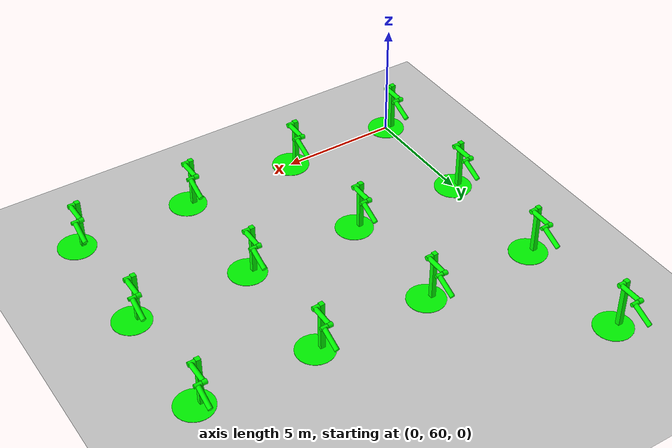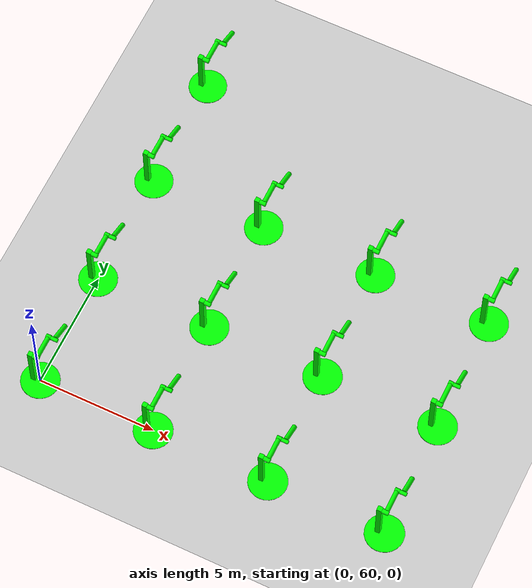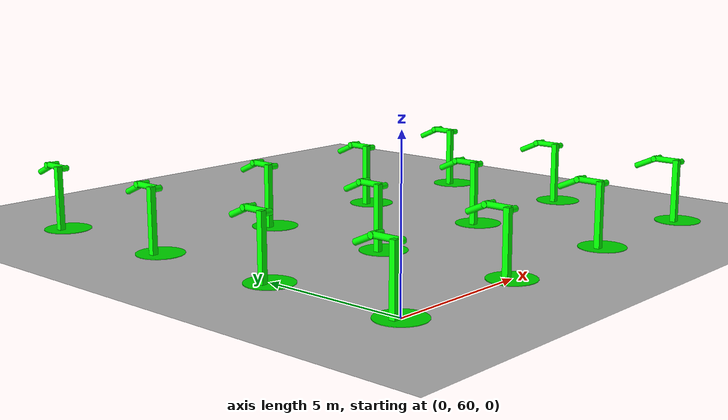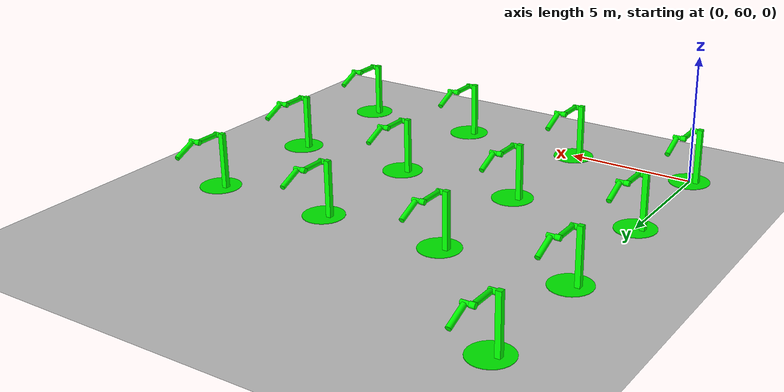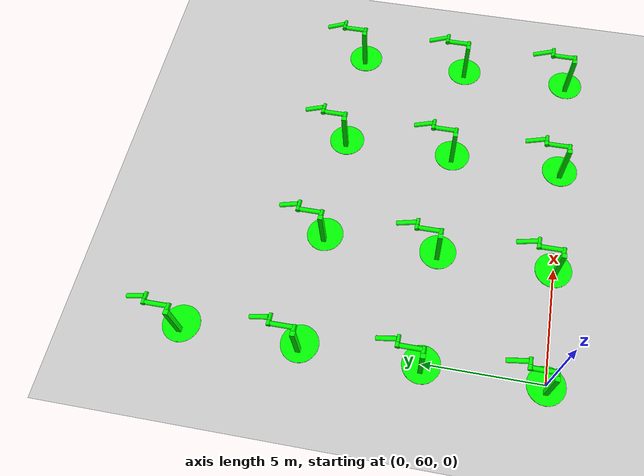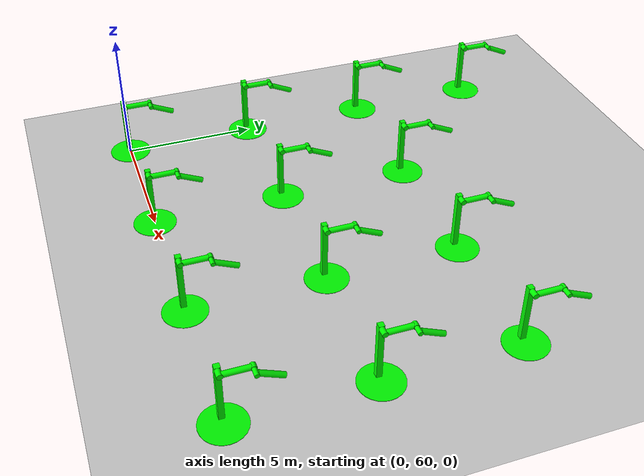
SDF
<sdf version="1.6">
 <world name="double_pendulums">
  <model name="ground_plane">
   <static>true</static>
   <link name="link">
    <collision name="collision">
     <geometry><plane><normal>0 0 1</normal><size>100 100</size></plane></geometry>
    </collision>
    <visual name="visual">
     <geometry><plane><normal>0 0 1</normal><size>100 100</size></plane></geometry>
     <material>
      <ambient>0.8 0.8 0.8 1</ambient>
      <diffuse>0.8 0.8 0.8 1</diffuse>
      <specular>0.8 0.8 0.8 1</specular>
     </material>
    </visual>
   </link>
  </model>
  <model name="dbl_pendulum_310">
   <pose>0 60 0 0 0 0</pose>
   <link name="base">
    <inertial><mass>100</mass></inertial>
    <visual name="vis_plate_on_ground">
     <pose>0 0 0.01 0 0 0</pose>
     <geometry><cylinder><radius>0.8</radius><length>0.02</length></cylinder></geometry>
     <material><ambient>0 1 0 1</ambient><diffuse>0 1 0 1</diffuse><specular>0 1 0 1</specular></material>
    </visual>
    <visual name="vis_pole">
     <pose>-0.275 0 1.1 0 0 0</pose>
     <geometry><box><size>0.2 0.2 2.2</size></box></geometry>
     <material><ambient>0 1 0 1</ambient><diffuse>0 1 0 1</diffuse><specular>0 1 0 1</specular></material>
    </visual>
    <collision name="col_plate_on_ground">
     <pose>0 0 0.01 0 0 0</pose>
     <geometry><cylinder><radius>0.8</radius><length>0.02</length></cylinder></geometry>
    </collision>
    <collision name="col_pole">
     <pose>-0.275 0 1.1 0 0 0</pose>
     <geometry><box><size>0.2 0.2 2.2</size></box></geometry>
    </collision>
   </link>
   <link name="upper_link">
    <pose>0 0 2.1 -1.5708 0 0</pose>
    <inertial><pose>0 0 0.5 0 0 0</pose></inertial>
    <visual name="vis_upper_joint">
     <pose>-0.05 0 0 0 1.5708 0</pose>
     <geometry><cylinder><radius>0.1</radius><length>0.3</length></cylinder></geometry>
     <material><ambient>0 1 0 1</ambient><diffuse>0 1 0 1</diffuse><specular>0 1 0 1</specular></material>
    </visual>
    <visual name="vis_lower_joint">
     <pose>0 0 1.0 0 1.5708 0</pose>
     <geometry><cylinder><radius>0.1</radius><length>0.2</length></cylinder></geometry>
     <material><ambient>0 1 0 1</ambient><diffuse>0 1 0 1</diffuse><specular>0 1 0 1</specular></material>
    </visual>
    <visual name="vis_cylinder">
     <pose>0 0 0.5 0 0 0</pose>
     <geometry><cylinder><radius>0.1</radius><length>0.9</length></cylinder></geometry>
     <material><ambient>0 1 0 1</ambient><diffuse>0 1 0 1</diffuse><specular>0 1 0 1</specular></material>
    </visual>
    <collision name="col_upper_joint">
     <pose>-0.05 0 0 0 1.5708 0</pose>
     <geometry><cylinder><radius>0.1</radius><length>0.3</length></cylinder></geometry>
    </collision>
    <collision name="col_lower_joint">
     <pose>0 0 1.0 0 1.5708 0</pose>
     <geometry><cylinder><radius>0.1</radius><length>0.2</length></cylinder></geometry>
    </collision>
    <collision name="col_cylinder">
     <pose>0 0 0.5 0 0 0</pose>
     <geometry><cylinder><radius>0.1</radius><length>0.9</length></cylinder></geometry>
    </collision>
   </link>
   <link name="lower_link">
    <pose>0.25 1.0 2.1 -2 0 0</pose>
    <inertial><pose>0 0 0.5 0 0 0</pose></inertial>
    <visual name="vis_lower_joint">
     <pose>0 0 0 0 1.5708 0</pose>
     <geometry><cylinder><radius>0.08</radius><length>0.3</length></cylinder></geometry>
     <material><ambient>0 1 0 1</ambient><diffuse>0 1 0 1</diffuse><specular>0 1 0 1</specular></material>
    </visual>
    <visual name="vis_cylinder">
     <pose>0 0 0.5 0 0 0</pose>
     <geometry><cylinder><radius>0.1</radius><length>0.9</length></cylinder></geometry>
     <material><ambient>0 1 0 1</ambient><diffuse>0 1 0 1</diffuse><specular>0 1 0 1</specular></material>
    </visual>
    <collision name="col_lower_joint">
     <pose>0 0 0 0 1.5708 0</pose>
     <geometry><cylinder><radius>0.08</radius><length>0.3</length></cylinder></geometry>
    </collision>
    <collision name="col_cylinder">
     <pose>0 0 0.5 0 0 0</pose>
     <geometry><cylinder><radius>0.1</radius><length>0.9</length></cylinder></geometry>
    </collision>
   </link>
   <joint name="upper_joint" type="revolute">
    <parent>base</parent>
    <child>upper_link</child>
    <axis><xyz>1.0 0 0</xyz></axis>
   </joint>
   <joint name="lower_joint" type="revolute">
    <parent>upper_link</parent>
    <child>lower_link</child>
    <axis><xyz>1.0 0 0</xyz></axis>
   </joint>
  </model>
  <model name="dbl_pendulum_311">
   <pose>5 60 0 0 0 0</pose>
   <link name="base">
    <inertial><mass>100</mass></inertial>
    <visual name="vis_plate_on_ground">
     <pose>0 0 0.01 0 0 0</pose>
     <geometry><cylinder><radius>0.8</radius><length>0.02</length></cylinder></geometry>
     <material><ambient>0 1 0 1</ambient><diffuse>0 1 0 1</diffuse><specular>0 1 0 1</specular></material>
    </visual>
    <visual name="vis_pole">
     <pose>-0.275 0 1.1 0 0 0</pose>
     <geometry><box><size>0.2 0.2 2.2</size></box></geometry>
     <material><ambient>0 1 0 1</ambient><diffuse>0 1 0 1</diffuse><specular>0 1 0 1</specular></material>
    </visual>
    <collision name="col_plate_on_ground">
     <pose>0 0 0.01 0 0 0</pose>
     <geometry><cylinder><radius>0.8</radius><length>0.02</length></cylinder></geometry>
    </collision>
    <collision name="col_pole">
     <pose>-0.275 0 1.1 0 0 0</pose>
     <geometry><box><size>0.2 0.2 2.2</size></box></geometry>
    </collision>
   </link>
   <link name="upper_link">
    <pose>0 0 2.1 -1.5708 0 0</pose>
    <inertial><pose>0 0 0.5 0 0 0</pose></inertial>
    <visual name="vis_upper_joint">
     <pose>-0.05 0 0 0 1.5708 0</pose>
     <geometry><cylinder><radius>0.1</radius><length>0.3</length></cylinder></geometry>
     <material><ambient>0 1 0 1</ambient><diffuse>0 1 0 1</diffuse><specular>0 1 0 1</specular></material>
    </visual>
    <visual name="vis_lower_joint">
     <pose>0 0 1.0 0 1.5708 0</pose>
     <geometry><cylinder><radius>0.1</radius><length>0.2</length></cylinder></geometry>
     <material><ambient>0 1 0 1</ambient><diffuse>0 1 0 1</diffuse><specular>0 1 0 1</specular></material>
    </visual>
    <visual name="vis_cylinder">
     <pose>0 0 0.5 0 0 0</pose>
     <geometry><cylinder><radius>0.1</radius><length>0.9</length></cylinder></geometry>
     <material><ambient>0 1 0 1</ambient><diffuse>0 1 0 1</diffuse><specular>0 1 0 1</specular></material>
    </visual>
    <collision name="col_upper_joint">
     <pose>-0.05 0 0 0 1.5708 0</pose>
     <geometry><cylinder><radius>0.1</radius><length>0.3</length></cylinder></geometry>
    </collision>
    <collision name="col_lower_joint">
     <pose>0 0 1.0 0 1.5708 0</pose>
     <geometry><cylinder><radius>0.1</radius><length>0.2</length></cylinder></geometry>
    </collision>
    <collision name="col_cylinder">
     <pose>0 0 0.5 0 0 0</pose>
     <geometry><cylinder><radius>0.1</radius><length>0.9</length></cylinder></geometry>
    </collision>
   </link>
   <link name="lower_link">
    <pose>0.25 1.0 2.1 -2 0 0</pose>
    <inertial><pose>0 0 0.5 0 0 0</pose></inertial>
    <visual name="vis_lower_joint">
     <pose>0 0 0 0 1.5708 0</pose>
     <geometry><cylinder><radius>0.08</radius><length>0.3</length></cylinder></geometry>
     <material><ambient>0 1 0 1</ambient><diffuse>0 1 0 1</diffuse><specular>0 1 0 1</specular></material>
    </visual>
    <visual name="vis_cylinder">
     <pose>0 0 0.5 0 0 0</pose>
     <geometry><cylinder><radius>0.1</radius><length>0.9</length></cylinder></geometry>
     <material><ambient>0 1 0 1</ambient><diffuse>0 1 0 1</diffuse><specular>0 1 0 1</specular></material>
    </visual>
    <collision name="col_lower_joint">
     <pose>0 0 0 0 1.5708 0</pose>
     <geometry><cylinder><radius>0.08</radius><length>0.3</length></cylinder></geometry>
    </collision>
    <collision name="col_cylinder">
     <pose>0 0 0.5 0 0 0</pose>
     <geometry><cylinder><radius>0.1</radius><length>0.9</length></cylinder></geometry>
    </collision>
   </link>
   <joint name="upper_joint" type="revolute">
    <parent>base</parent>
    <child>upper_link</child>
    <axis><xyz>1.0 0 0</xyz></axis>
   </joint>
   <joint name="lower_joint" type="revolute">
    <parent>upper_link</parent>
    <child>lower_link</child>
    <axis><xyz>1.0 0 0</xyz></axis>
   </joint>
  </model>
  <model name="dbl_pendulum_312">
   <pose>10 60 0 0 0 0</pose>
   <link name="base">
    <inertial><mass>100</mass></inertial>
    <visual name="vis_plate_on_ground">
     <pose>0 0 0.01 0 0 0</pose>
     <geometry><cylinder><radius>0.8</radius><length>0.02</length></cylinder></geometry>
     <material><ambient>0 1 0 1</ambient><diffuse>0 1 0 1</diffuse><specular>0 1 0 1</specular></material>
    </visual>
    <visual name="vis_pole">
     <pose>-0.275 0 1.1 0 0 0</pose>
     <geometry><box><size>0.2 0.2 2.2</size></box></geometry>
     <material><ambient>0 1 0 1</ambient><diffuse>0 1 0 1</diffuse><specular>0 1 0 1</specular></material>
    </visual>
    <collision name="col_plate_on_ground">
     <pose>0 0 0.01 0 0 0</pose>
     <geometry><cylinder><radius>0.8</radius><length>0.02</length></cylinder></geometry>
    </collision>
    <collision name="col_pole">
     <pose>-0.275 0 1.1 0 0 0</pose>
     <geometry><box><size>0.2 0.2 2.2</size></box></geometry>
    </collision>
   </link>
   <link name="upper_link">
    <pose>0 0 2.1 -1.5708 0 0</pose>
    <inertial><pose>0 0 0.5 0 0 0</pose></inertial>
    <visual name="vis_upper_joint">
     <pose>-0.05 0 0 0 1.5708 0</pose>
     <geometry><cylinder><radius>0.1</radius><length>0.3</length></cylinder></geometry>
     <material><ambient>0 1 0 1</ambient><diffuse>0 1 0 1</diffuse><specular>0 1 0 1</specular></material>
    </visual>
    <visual name="vis_lower_joint">
     <pose>0 0 1.0 0 1.5708 0</pose>
     <geometry><cylinder><radius>0.1</radius><length>0.2</length></cylinder></geometry>
     <material><ambient>0 1 0 1</ambient><diffuse>0 1 0 1</diffuse><specular>0 1 0 1</specular></material>
    </visual>
    <visual name="vis_cylinder">
     <pose>0 0 0.5 0 0 0</pose>
     <geometry><cylinder><radius>0.1</radius><length>0.9</length></cylinder></geometry>
     <material><ambient>0 1 0 1</ambient><diffuse>0 1 0 1</diffuse><specular>0 1 0 1</specular></material>
    </visual>
    <collision name="col_upper_joint">
     <pose>-0.05 0 0 0 1.5708 0</pose>
     <geometry><cylinder><radius>0.1</radius><length>0.3</length></cylinder></geometry>
    </collision>
    <collision name="col_lower_joint">
     <pose>0 0 1.0 0 1.5708 0</pose>
     <geometry><cylinder><radius>0.1</radius><length>0.2</length></cylinder></geometry>
    </collision>
    <collision name="col_cylinder">
     <pose>0 0 0.5 0 0 0</pose>
     <geometry><cylinder><radius>0.1</radius><length>0.9</length></cylinder></geometry>
    </collision>
   </link>
   <link name="lower_link">
    <pose>0.25 1.0 2.1 -2 0 0</pose>
    <inertial><pose>0 0 0.5 0 0 0</pose></inertial>
    <visual name="vis_lower_joint">
     <pose>0 0 0 0 1.5708 0</pose>
     <geometry><cylinder><radius>0.08</radius><length>0.3</length></cylinder></geometry>
     <material><ambient>0 1 0 1</ambient><diffuse>0 1 0 1</diffuse><specular>0 1 0 1</specular></material>
    </visual>
    <visual name="vis_cylinder">
     <pose>0 0 0.5 0 0 0</pose>
     <geometry><cylinder><radius>0.1</radius><length>0.9</length></cylinder></geometry>
     <material><ambient>0 1 0 1</ambient><diffuse>0 1 0 1</diffuse><specular>0 1 0 1</specular></material>
    </visual>
    <collision name="col_lower_joint">
     <pose>0 0 0 0 1.5708 0</pose>
     <geometry><cylinder><radius>0.08</radius><length>0.3</length></cylinder></geometry>
    </collision>
    <collision name="col_cylinder">
     <pose>0 0 0.5 0 0 0</pose>
     <geometry><cylinder><radius>0.1</radius><length>0.9</length></cylinder></geometry>
    </collision>
   </link>
   <joint name="upper_joint" type="revolute">
    <parent>base</parent>
    <child>upper_link</child>
    <axis><xyz>1.0 0 0</xyz></axis>
   </joint>
   <joint name="lower_joint" type="revolute">
    <parent>upper_link</parent>
    <child>lower_link</child>
    <axis><xyz>1.0 0 0</xyz></axis>
   </joint>
  </model>
  <model name="dbl_pendulum_313">
   <pose>15 60 0 0 0 0</pose>
   <link name="base">
    <inertial><mass>100</mass></inertial>
    <visual name="vis_plate_on_ground">
     <pose>0 0 0.01 0 0 0</pose>
     <geometry><cylinder><radius>0.8</radius><length>0.02</length></cylinder></geometry>
     <material><ambient>0 1 0 1</ambient><diffuse>0 1 0 1</diffuse><specular>0 1 0 1</specular></material>
    </visual>
    <visual name="vis_pole">
     <pose>-0.275 0 1.1 0 0 0</pose>
     <geometry><box><size>0.2 0.2 2.2</size></box></geometry>
     <material><ambient>0 1 0 1</ambient><diffuse>0 1 0 1</diffuse><specular>0 1 0 1</specular></material>
    </visual>
    <collision name="col_plate_on_ground">
     <pose>0 0 0.01 0 0 0</pose>
     <geometry><cylinder><radius>0.8</radius><length>0.02</length></cylinder></geometry>
    </collision>
    <collision name="col_pole">
     <pose>-0.275 0 1.1 0 0 0</pose>
     <geometry><box><size>0.2 0.2 2.2</size></box></geometry>
    </collision>
   </link>
   <link name="upper_link">
    <pose>0 0 2.1 -1.5708 0 0</pose>
    <inertial><pose>0 0 0.5 0 0 0</pose></inertial>
    <visual name="vis_upper_joint">
     <pose>-0.05 0 0 0 1.5708 0</pose>
     <geometry><cylinder><radius>0.1</radius><length>0.3</length></cylinder></geometry>
     <material><ambient>0 1 0 1</ambient><diffuse>0 1 0 1</diffuse><specular>0 1 0 1</specular></material>
    </visual>
    <visual name="vis_lower_joint">
     <pose>0 0 1.0 0 1.5708 0</pose>
     <geometry><cylinder><radius>0.1</radius><length>0.2</length></cylinder></geometry>
     <material><ambient>0 1 0 1</ambient><diffuse>0 1 0 1</diffuse><specular>0 1 0 1</specular></material>
    </visual>
    <visual name="vis_cylinder">
     <pose>0 0 0.5 0 0 0</pose>
     <geometry><cylinder><radius>0.1</radius><length>0.9</length></cylinder></geometry>
     <material><ambient>0 1 0 1</ambient><diffuse>0 1 0 1</diffuse><specular>0 1 0 1</specular></material>
    </visual>
    <collision name="col_upper_joint">
     <pose>-0.05 0 0 0 1.5708 0</pose>
     <geometry><cylinder><radius>0.1</radius><length>0.3</length></cylinder></geometry>
    </collision>
    <collision name="col_lower_joint">
     <pose>0 0 1.0 0 1.5708 0</pose>
     <geometry><cylinder><radius>0.1</radius><length>0.2</length></cylinder></geometry>
    </collision>
    <collision name="col_cylinder">
     <pose>0 0 0.5 0 0 0</pose>
     <geometry><cylinder><radius>0.1</radius><length>0.9</length></cylinder></geometry>
    </collision>
   </link>
   <link name="lower_link">
    <pose>0.25 1.0 2.1 -2 0 0</pose>
    <inertial><pose>0 0 0.5 0 0 0</pose></inertial>
    <visual name="vis_lower_joint">
     <pose>0 0 0 0 1.5708 0</pose>
     <geometry><cylinder><radius>0.08</radius><length>0.3</length></cylinder></geometry>
     <material><ambient>0 1 0 1</ambient><diffuse>0 1 0 1</diffuse><specular>0 1 0 1</specular></material>
    </visual>
    <visual name="vis_cylinder">
     <pose>0 0 0.5 0 0 0</pose>
     <geometry><cylinder><radius>0.1</radius><length>0.9</length></cylinder></geometry>
     <material><ambient>0 1 0 1</ambient><diffuse>0 1 0 1</diffuse><specular>0 1 0 1</specular></material>
    </visual>
    <collision name="col_lower_joint">
     <pose>0 0 0 0 1.5708 0</pose>
     <geometry><cylinder><radius>0.08</radius><length>0.3</length></cylinder></geometry>
    </collision>
    <collision name="col_cylinder">
     <pose>0 0 0.5 0 0 0</pose>
     <geometry><cylinder><radius>0.1</radius><length>0.9</length></cylinder></geometry>
    </collision>
   </link>
   <joint name="upper_joint" type="revolute">
    <parent>base</parent>
    <child>upper_link</child>
    <axis><xyz>1.0 0 0</xyz></axis>
   </joint>
   <joint name="lower_joint" type="revolute">
    <parent>upper_link</parent>
    <child>lower_link</child>
    <axis><xyz>1.0 0 0</xyz></axis>
   </joint>
  </model>
  <model name="dbl_pendulum_335">
   <pose>0 65 0 0 0 0</pose>
   <link name="base">
    <inertial><mass>100</mass></inertial>
    <visual name="vis_plate_on_ground">
     <pose>0 0 0.01 0 0 0</pose>
     <geometry><cylinder><radius>0.8</radius><length>0.02</length></cylinder></geometry>
     <material><ambient>0 1 0 1</ambient><diffuse>0 1 0 1</diffuse><specular>0 1 0 1</specular></material>
    </visual>
    <visual name="vis_pole">
     <pose>-0.275 0 1.1 0 0 0</pose>
     <geometry><box><size>0.2 0.2 2.2</size></box></geometry>
     <material><ambient>0 1 0 1</ambient><diffuse>0 1 0 1</diffuse><specular>0 1 0 1</specular></material>
    </visual>
    <collision name="col_plate_on_ground">
     <pose>0 0 0.01 0 0 0</pose>
     <geometry><cylinder><radius>0.8</radius><length>0.02</length></cylinder></geometry>
    </collision>
    <collision name="col_pole">
     <pose>-0.275 0 1.1 0 0 0</pose>
     <geometry><box><size>0.2 0.2 2.2</size></box></geometry>
    </collision>
   </link>
   <link name="upper_link">
    <pose>0 0 2.1 -1.5708 0 0</pose>
    <inertial><pose>0 0 0.5 0 0 0</pose></inertial>
    <visual name="vis_upper_joint">
     <pose>-0.05 0 0 0 1.5708 0</pose>
     <geometry><cylinder><radius>0.1</radius><length>0.3</length></cylinder></geometry>
     <material><ambient>0 1 0 1</ambient><diffuse>0 1 0 1</diffuse><specular>0 1 0 1</specular></material>
    </visual>
    <visual name="vis_lower_joint">
     <pose>0 0 1.0 0 1.5708 0</pose>
     <geometry><cylinder><radius>0.1</radius><length>0.2</length></cylinder></geometry>
     <material><ambient>0 1 0 1</ambient><diffuse>0 1 0 1</diffuse><specular>0 1 0 1</specular></material>
    </visual>
    <visual name="vis_cylinder">
     <pose>0 0 0.5 0 0 0</pose>
     <geometry><cylinder><radius>0.1</radius><length>0.9</length></cylinder></geometry>
     <material><ambient>0 1 0 1</ambient><diffuse>0 1 0 1</diffuse><specular>0 1 0 1</specular></material>
    </visual>
    <collision name="col_upper_joint">
     <pose>-0.05 0 0 0 1.5708 0</pose>
     <geometry><cylinder><radius>0.1</radius><length>0.3</length></cylinder></geometry>
    </collision>
    <collision name="col_lower_joint">
     <pose>0 0 1.0 0 1.5708 0</pose>
     <geometry><cylinder><radius>0.1</radius><length>0.2</length></cylinder></geometry>
    </collision>
    <collision name="col_cylinder">
     <pose>0 0 0.5 0 0 0</pose>
     <geometry><cylinder><radius>0.1</radius><length>0.9</length></cylinder></geometry>
    </collision>
   </link>
   <link name="lower_link">
    <pose>0.25 1.0 2.1 -2 0 0</pose>
    <inertial><pose>0 0 0.5 0 0 0</pose></inertial>
    <visual name="vis_lower_joint">
     <pose>0 0 0 0 1.5708 0</pose>
     <geometry><cylinder><radius>0.08</radius><length>0.3</length></cylinder></geometry>
     <material><ambient>0 1 0 1</ambient><diffuse>0 1 0 1</diffuse><specular>0 1 0 1</specular></material>
    </visual>
    <visual name="vis_cylinder">
     <pose>0 0 0.5 0 0 0</pose>
     <geometry><cylinder><radius>0.1</radius><length>0.9</length></cylinder></geometry>
     <material><ambient>0 1 0 1</ambient><diffuse>0 1 0 1</diffuse><specular>0 1 0 1</specular></material>
    </visual>
    <collision name="col_lower_joint">
     <pose>0 0 0 0 1.5708 0</pose>
     <geometry><cylinder><radius>0.08</radius><length>0.3</length></cylinder></geometry>
    </collision>
    <collision name="col_cylinder">
     <pose>0 0 0.5 0 0 0</pose>
     <geometry><cylinder><radius>0.1</radius><length>0.9</length></cylinder></geometry>
    </collision>
   </link>
   <joint name="upper_joint" type="revolute">
    <parent>base</parent>
    <child>upper_link</child>
    <axis><xyz>1.0 0 0</xyz></axis>
   </joint>
   <joint name="lower_joint" type="revolute">
    <parent>upper_link</parent>
    <child>lower_link</child>
    <axis><xyz>1.0 0 0</xyz></axis>
   </joint>
  </model>
  <model name="dbl_pendulum_336">
   <pose>5 65 0 0 0 0</pose>
   <link name="base">
    <inertial><mass>100</mass></inertial>
    <visual name="vis_plate_on_ground">
     <pose>0 0 0.01 0 0 0</pose>
     <geometry><cylinder><radius>0.8</radius><length>0.02</length></cylinder></geometry>
     <material><ambient>0 1 0 1</ambient><diffuse>0 1 0 1</diffuse><specular>0 1 0 1</specular></material>
    </visual>
    <visual name="vis_pole">
     <pose>-0.275 0 1.1 0 0 0</pose>
     <geometry><box><size>0.2 0.2 2.2</size></box></geometry>
     <material><ambient>0 1 0 1</ambient><diffuse>0 1 0 1</diffuse><specular>0 1 0 1</specular></material>
    </visual>
    <collision name="col_plate_on_ground">
     <pose>0 0 0.01 0 0 0</pose>
     <geometry><cylinder><radius>0.8</radius><length>0.02</length></cylinder></geometry>
    </collision>
    <collision name="col_pole">
     <pose>-0.275 0 1.1 0 0 0</pose>
     <geometry><box><size>0.2 0.2 2.2</size></box></geometry>
    </collision>
   </link>
   <link name="upper_link">
    <pose>0 0 2.1 -1.5708 0 0</pose>
    <inertial><pose>0 0 0.5 0 0 0</pose></inertial>
    <visual name="vis_upper_joint">
     <pose>-0.05 0 0 0 1.5708 0</pose>
     <geometry><cylinder><radius>0.1</radius><length>0.3</length></cylinder></geometry>
     <material><ambient>0 1 0 1</ambient><diffuse>0 1 0 1</diffuse><specular>0 1 0 1</specular></material>
    </visual>
    <visual name="vis_lower_joint">
     <pose>0 0 1.0 0 1.5708 0</pose>
     <geometry><cylinder><radius>0.1</radius><length>0.2</length></cylinder></geometry>
     <material><ambient>0 1 0 1</ambient><diffuse>0 1 0 1</diffuse><specular>0 1 0 1</specular></material>
    </visual>
    <visual name="vis_cylinder">
     <pose>0 0 0.5 0 0 0</pose>
     <geometry><cylinder><radius>0.1</radius><length>0.9</length></cylinder></geometry>
     <material><ambient>0 1 0 1</ambient><diffuse>0 1 0 1</diffuse><specular>0 1 0 1</specular></material>
    </visual>
    <collision name="col_upper_joint">
     <pose>-0.05 0 0 0 1.5708 0</pose>
     <geometry><cylinder><radius>0.1</radius><length>0.3</length></cylinder></geometry>
    </collision>
    <collision name="col_lower_joint">
     <pose>0 0 1.0 0 1.5708 0</pose>
     <geometry><cylinder><radius>0.1</radius><length>0.2</length></cylinder></geometry>
    </collision>
    <collision name="col_cylinder">
     <pose>0 0 0.5 0 0 0</pose>
     <geometry><cylinder><radius>0.1</radius><length>0.9</length></cylinder></geometry>
    </collision>
   </link>
   <link name="lower_link">
    <pose>0.25 1.0 2.1 -2 0 0</pose>
    <inertial><pose>0 0 0.5 0 0 0</pose></inertial>
    <visual name="vis_lower_joint">
     <pose>0 0 0 0 1.5708 0</pose>
     <geometry><cylinder><radius>0.08</radius><length>0.3</length></cylinder></geometry>
     <material><ambient>0 1 0 1</ambient><diffuse>0 1 0 1</diffuse><specular>0 1 0 1</specular></material>
    </visual>
    <visual name="vis_cylinder">
     <pose>0 0 0.5 0 0 0</pose>
     <geometry><cylinder><radius>0.1</radius><length>0.9</length></cylinder></geometry>
     <material><ambient>0 1 0 1</ambient><diffuse>0 1 0 1</diffuse><specular>0 1 0 1</specular></material>
    </visual>
    <collision name="col_lower_joint">
     <pose>0 0 0 0 1.5708 0</pose>
     <geometry><cylinder><radius>0.08</radius><length>0.3</length></cylinder></geometry>
    </collision>
    <collision name="col_cylinder">
     <pose>0 0 0.5 0 0 0</pose>
     <geometry><cylinder><radius>0.1</radius><length>0.9</length></cylinder></geometry>
    </collision>
   </link>
   <joint name="upper_joint" type="revolute">
    <parent>base</parent>
    <child>upper_link</child>
    <axis><xyz>1.0 0 0</xyz></axis>
   </joint>
   <joint name="lower_joint" type="revolute">
    <parent>upper_link</parent>
    <child>lower_link</child>
    <axis><xyz>1.0 0 0</xyz></axis>
   </joint>
  </model>
  <model name="dbl_pendulum_337">
   <pose>10 65 0 0 0 0</pose>
   <link name="base">
    <inertial><mass>100</mass></inertial>
    <visual name="vis_plate_on_ground">
     <pose>0 0 0.01 0 0 0</pose>
     <geometry><cylinder><radius>0.8</radius><length>0.02</length></cylinder></geometry>
     <material><ambient>0 1 0 1</ambient><diffuse>0 1 0 1</diffuse><specular>0 1 0 1</specular></material>
    </visual>
    <visual name="vis_pole">
     <pose>-0.275 0 1.1 0 0 0</pose>
     <geometry><box><size>0.2 0.2 2.2</size></box></geometry>
     <material><ambient>0 1 0 1</ambient><diffuse>0 1 0 1</diffuse><specular>0 1 0 1</specular></material>
    </visual>
    <collision name="col_plate_on_ground">
     <pose>0 0 0.01 0 0 0</pose>
     <geometry><cylinder><radius>0.8</radius><length>0.02</length></cylinder></geometry>
    </collision>
    <collision name="col_pole">
     <pose>-0.275 0 1.1 0 0 0</pose>
     <geometry><box><size>0.2 0.2 2.2</size></box></geometry>
    </collision>
   </link>
   <link name="upper_link">
    <pose>0 0 2.1 -1.5708 0 0</pose>
    <inertial><pose>0 0 0.5 0 0 0</pose></inertial>
    <visual name="vis_upper_joint">
     <pose>-0.05 0 0 0 1.5708 0</pose>
     <geometry><cylinder><radius>0.1</radius><length>0.3</length></cylinder></geometry>
     <material><ambient>0 1 0 1</ambient><diffuse>0 1 0 1</diffuse><specular>0 1 0 1</specular></material>
    </visual>
    <visual name="vis_lower_joint">
     <pose>0 0 1.0 0 1.5708 0</pose>
     <geometry><cylinder><radius>0.1</radius><length>0.2</length></cylinder></geometry>
     <material><ambient>0 1 0 1</ambient><diffuse>0 1 0 1</diffuse><specular>0 1 0 1</specular></material>
    </visual>
    <visual name="vis_cylinder">
     <pose>0 0 0.5 0 0 0</pose>
     <geometry><cylinder><radius>0.1</radius><length>0.9</length></cylinder></geometry>
     <material><ambient>0 1 0 1</ambient><diffuse>0 1 0 1</diffuse><specular>0 1 0 1</specular></material>
    </visual>
    <collision name="col_upper_joint">
     <pose>-0.05 0 0 0 1.5708 0</pose>
     <geometry><cylinder><radius>0.1</radius><length>0.3</length></cylinder></geometry>
    </collision>
    <collision name="col_lower_joint">
     <pose>0 0 1.0 0 1.5708 0</pose>
     <geometry><cylinder><radius>0.1</radius><length>0.2</length></cylinder></geometry>
    </collision>
    <collision name="col_cylinder">
     <pose>0 0 0.5 0 0 0</pose>
     <geometry><cylinder><radius>0.1</radius><length>0.9</length></cylinder></geometry>
    </collision>
   </link>
   <link name="lower_link">
    <pose>0.25 1.0 2.1 -2 0 0</pose>
    <inertial><pose>0 0 0.5 0 0 0</pose></inertial>
    <visual name="vis_lower_joint">
     <pose>0 0 0 0 1.5708 0</pose>
     <geometry><cylinder><radius>0.08</radius><length>0.3</length></cylinder></geometry>
     <material><ambient>0 1 0 1</ambient><diffuse>0 1 0 1</diffuse><specular>0 1 0 1</specular></material>
    </visual>
    <visual name="vis_cylinder">
     <pose>0 0 0.5 0 0 0</pose>
     <geometry><cylinder><radius>0.1</radius><length>0.9</length></cylinder></geometry>
     <material><ambient>0 1 0 1</ambient><diffuse>0 1 0 1</diffuse><specular>0 1 0 1</specular></material>
    </visual>
    <collision name="col_lower_joint">
     <pose>0 0 0 0 1.5708 0</pose>
     <geometry><cylinder><radius>0.08</radius><length>0.3</length></cylinder></geometry>
    </collision>
    <collision name="col_cylinder">
     <pose>0 0 0.5 0 0 0</pose>
     <geometry><cylinder><radius>0.1</radius><length>0.9</length></cylinder></geometry>
    </collision>
   </link>
   <joint name="upper_joint" type="revolute">
    <parent>base</parent>
    <child>upper_link</child>
    <axis><xyz>1.0 0 0</xyz></axis>
   </joint>
   <joint name="lower_joint" type="revolute">
    <parent>upper_link</parent>
    <child>lower_link</child>
    <axis><xyz>1.0 0 0</xyz></axis>
   </joint>
  </model>
  <model name="dbl_pendulum_338">
   <pose>15 65 0 0 0 0</pose>
   <link name="base">
    <inertial><mass>100</mass></inertial>
    <visual name="vis_plate_on_ground">
     <pose>0 0 0.01 0 0 0</pose>
     <geometry><cylinder><radius>0.8</radius><length>0.02</length></cylinder></geometry>
     <material><ambient>0 1 0 1</ambient><diffuse>0 1 0 1</diffuse><specular>0 1 0 1</specular></material>
    </visual>
    <visual name="vis_pole">
     <pose>-0.275 0 1.1 0 0 0</pose>
     <geometry><box><size>0.2 0.2 2.2</size></box></geometry>
     <material><ambient>0 1 0 1</ambient><diffuse>0 1 0 1</diffuse><specular>0 1 0 1</specular></material>
    </visual>
    <collision name="col_plate_on_ground">
     <pose>0 0 0.01 0 0 0</pose>
     <geometry><cylinder><radius>0.8</radius><length>0.02</length></cylinder></geometry>
    </collision>
    <collision name="col_pole">
     <pose>-0.275 0 1.1 0 0 0</pose>
     <geometry><box><size>0.2 0.2 2.2</size></box></geometry>
    </collision>
   </link>
   <link name="upper_link">
    <pose>0 0 2.1 -1.5708 0 0</pose>
    <inertial><pose>0 0 0.5 0 0 0</pose></inertial>
    <visual name="vis_upper_joint">
     <pose>-0.05 0 0 0 1.5708 0</pose>
     <geometry><cylinder><radius>0.1</radius><length>0.3</length></cylinder></geometry>
     <material><ambient>0 1 0 1</ambient><diffuse>0 1 0 1</diffuse><specular>0 1 0 1</specular></material>
    </visual>
    <visual name="vis_lower_joint">
     <pose>0 0 1.0 0 1.5708 0</pose>
     <geometry><cylinder><radius>0.1</radius><length>0.2</length></cylinder></geometry>
     <material><ambient>0 1 0 1</ambient><diffuse>0 1 0 1</diffuse><specular>0 1 0 1</specular></material>
    </visual>
    <visual name="vis_cylinder">
     <pose>0 0 0.5 0 0 0</pose>
     <geometry><cylinder><radius>0.1</radius><length>0.9</length></cylinder></geometry>
     <material><ambient>0 1 0 1</ambient><diffuse>0 1 0 1</diffuse><specular>0 1 0 1</specular></material>
    </visual>
    <collision name="col_upper_joint">
     <pose>-0.05 0 0 0 1.5708 0</pose>
     <geometry><cylinder><radius>0.1</radius><length>0.3</length></cylinder></geometry>
    </collision>
    <collision name="col_lower_joint">
     <pose>0 0 1.0 0 1.5708 0</pose>
     <geometry><cylinder><radius>0.1</radius><length>0.2</length></cylinder></geometry>
    </collision>
    <collision name="col_cylinder">
     <pose>0 0 0.5 0 0 0</pose>
     <geometry><cylinder><radius>0.1</radius><length>0.9</length></cylinder></geometry>
    </collision>
   </link>
   <link name="lower_link">
    <pose>0.25 1.0 2.1 -2 0 0</pose>
    <inertial><pose>0 0 0.5 0 0 0</pose></inertial>
    <visual name="vis_lower_joint">
     <pose>0 0 0 0 1.5708 0</pose>
     <geometry><cylinder><radius>0.08</radius><length>0.3</length></cylinder></geometry>
     <material><ambient>0 1 0 1</ambient><diffuse>0 1 0 1</diffuse><specular>0 1 0 1</specular></material>
    </visual>
    <visual name="vis_cylinder">
     <pose>0 0 0.5 0 0 0</pose>
     <geometry><cylinder><radius>0.1</radius><length>0.9</length></cylinder></geometry>
     <material><ambient>0 1 0 1</ambient><diffuse>0 1 0 1</diffuse><specular>0 1 0 1</specular></material>
    </visual>
    <collision name="col_lower_joint">
     <pose>0 0 0 0 1.5708 0</pose>
     <geometry><cylinder><radius>0.08</radius><length>0.3</length></cylinder></geometry>
    </collision>
    <collision name="col_cylinder">
     <pose>0 0 0.5 0 0 0</pose>
     <geometry><cylinder><radius>0.1</radius><length>0.9</length></cylinder></geometry>
    </collision>
   </link>
   <joint name="upper_joint" type="revolute">
    <parent>base</parent>
    <child>upper_link</child>
    <axis><xyz>1.0 0 0</xyz></axis>
   </joint>
   <joint name="lower_joint" type="revolute">
    <parent>upper_link</parent>
    <child>lower_link</child>
    <axis><xyz>1.0 0 0</xyz></axis>
   </joint>
  </model>
  <model name="dbl_pendulum_360">
   <pose>0 70 0 0 0 0</pose>
   <link name="base">
    <inertial><mass>100</mass></inertial>
    <visual name="vis_plate_on_ground">
     <pose>0 0 0.01 0 0 0</pose>
     <geometry><cylinder><radius>0.8</radius><length>0.02</length></cylinder></geometry>
     <material><ambient>0 1 0 1</ambient><diffuse>0 1 0 1</diffuse><specular>0 1 0 1</specular></material>
    </visual>
    <visual name="vis_pole">
     <pose>-0.275 0 1.1 0 0 0</pose>
     <geometry><box><size>0.2 0.2 2.2</size></box></geometry>
     <material><ambient>0 1 0 1</ambient><diffuse>0 1 0 1</diffuse><specular>0 1 0 1</specular></material>
    </visual>
    <collision name="col_plate_on_ground">
     <pose>0 0 0.01 0 0 0</pose>
     <geometry><cylinder><radius>0.8</radius><length>0.02</length></cylinder></geometry>
    </collision>
    <collision name="col_pole">
     <pose>-0.275 0 1.1 0 0 0</pose>
     <geometry><box><size>0.2 0.2 2.2</size></box></geometry>
    </collision>
   </link>
   <link name="upper_link">
    <pose>0 0 2.1 -1.5708 0 0</pose>
    <inertial><pose>0 0 0.5 0 0 0</pose></inertial>
    <visual name="vis_upper_joint">
     <pose>-0.05 0 0 0 1.5708 0</pose>
     <geometry><cylinder><radius>0.1</radius><length>0.3</length></cylinder></geometry>
     <material><ambient>0 1 0 1</ambient><diffuse>0 1 0 1</diffuse><specular>0 1 0 1</specular></material>
    </visual>
    <visual name="vis_lower_joint">
     <pose>0 0 1.0 0 1.5708 0</pose>
     <geometry><cylinder><radius>0.1</radius><length>0.2</length></cylinder></geometry>
     <material><ambient>0 1 0 1</ambient><diffuse>0 1 0 1</diffuse><specular>0 1 0 1</specular></material>
    </visual>
    <visual name="vis_cylinder">
     <pose>0 0 0.5 0 0 0</pose>
     <geometry><cylinder><radius>0.1</radius><length>0.9</length></cylinder></geometry>
     <material><ambient>0 1 0 1</ambient><diffuse>0 1 0 1</diffuse><specular>0 1 0 1</specular></material>
    </visual>
    <collision name="col_upper_joint">
     <pose>-0.05 0 0 0 1.5708 0</pose>
     <geometry><cylinder><radius>0.1</radius><length>0.3</length></cylinder></geometry>
    </collision>
    <collision name="col_lower_joint">
     <pose>0 0 1.0 0 1.5708 0</pose>
     <geometry><cylinder><radius>0.1</radius><length>0.2</length></cylinder></geometry>
    </collision>
    <collision name="col_cylinder">
     <pose>0 0 0.5 0 0 0</pose>
     <geometry><cylinder><radius>0.1</radius><length>0.9</length></cylinder></geometry>
    </collision>
   </link>
   <link name="lower_link">
    <pose>0.25 1.0 2.1 -2 0 0</pose>
    <inertial><pose>0 0 0.5 0 0 0</pose></inertial>
    <visual name="vis_lower_joint">
     <pose>0 0 0 0 1.5708 0</pose>
     <geometry><cylinder><radius>0.08</radius><length>0.3</length></cylinder></geometry>
     <material><ambient>0 1 0 1</ambient><diffuse>0 1 0 1</diffuse><specular>0 1 0 1</specular></material>
    </visual>
    <visual name="vis_cylinder">
     <pose>0 0 0.5 0 0 0</pose>
     <geometry><cylinder><radius>0.1</radius><length>0.9</length></cylinder></geometry>
     <material><ambient>0 1 0 1</ambient><diffuse>0 1 0 1</diffuse><specular>0 1 0 1</specular></material>
    </visual>
    <collision name="col_lower_joint">
     <pose>0 0 0 0 1.5708 0</pose>
     <geometry><cylinder><radius>0.08</radius><length>0.3</length></cylinder></geometry>
    </collision>
    <collision name="col_cylinder">
     <pose>0 0 0.5 0 0 0</pose>
     <geometry><cylinder><radius>0.1</radius><length>0.9</length></cylinder></geometry>
    </collision>
   </link>
   <joint name="upper_joint" type="revolute">
    <parent>base</parent>
    <child>upper_link</child>
    <axis><xyz>1.0 0 0</xyz></axis>
   </joint>
   <joint name="lower_joint" type="revolute">
    <parent>upper_link</parent>
    <child>lower_link</child>
    <axis><xyz>1.0 0 0</xyz></axis>
   </joint>
  </model>
  <model name="dbl_pendulum_361">
   <pose>5 70 0 0 0 0</pose>
   <link name="base">
    <inertial><mass>100</mass></inertial>
    <visual name="vis_plate_on_ground">
     <pose>0 0 0.01 0 0 0</pose>
     <geometry><cylinder><radius>0.8</radius><length>0.02</length></cylinder></geometry>
     <material><ambient>0 1 0 1</ambient><diffuse>0 1 0 1</diffuse><specular>0 1 0 1</specular></material>
    </visual>
    <visual name="vis_pole">
     <pose>-0.275 0 1.1 0 0 0</pose>
     <geometry><box><size>0.2 0.2 2.2</size></box></geometry>
     <material><ambient>0 1 0 1</ambient><diffuse>0 1 0 1</diffuse><specular>0 1 0 1</specular></material>
    </visual>
    <collision name="col_plate_on_ground">
     <pose>0 0 0.01 0 0 0</pose>
     <geometry><cylinder><radius>0.8</radius><length>0.02</length></cylinder></geometry>
    </collision>
    <collision name="col_pole">
     <pose>-0.275 0 1.1 0 0 0</pose>
     <geometry><box><size>0.2 0.2 2.2</size></box></geometry>
    </collision>
   </link>
   <link name="upper_link">
    <pose>0 0 2.1 -1.5708 0 0</pose>
    <inertial><pose>0 0 0.5 0 0 0</pose></inertial>
    <visual name="vis_upper_joint">
     <pose>-0.05 0 0 0 1.5708 0</pose>
     <geometry><cylinder><radius>0.1</radius><length>0.3</length></cylinder></geometry>
     <material><ambient>0 1 0 1</ambient><diffuse>0 1 0 1</diffuse><specular>0 1 0 1</specular></material>
    </visual>
    <visual name="vis_lower_joint">
     <pose>0 0 1.0 0 1.5708 0</pose>
     <geometry><cylinder><radius>0.1</radius><length>0.2</length></cylinder></geometry>
     <material><ambient>0 1 0 1</ambient><diffuse>0 1 0 1</diffuse><specular>0 1 0 1</specular></material>
    </visual>
    <visual name="vis_cylinder">
     <pose>0 0 0.5 0 0 0</pose>
     <geometry><cylinder><radius>0.1</radius><length>0.9</length></cylinder></geometry>
     <material><ambient>0 1 0 1</ambient><diffuse>0 1 0 1</diffuse><specular>0 1 0 1</specular></material>
    </visual>
    <collision name="col_upper_joint">
     <pose>-0.05 0 0 0 1.5708 0</pose>
     <geometry><cylinder><radius>0.1</radius><length>0.3</length></cylinder></geometry>
    </collision>
    <collision name="col_lower_joint">
     <pose>0 0 1.0 0 1.5708 0</pose>
     <geometry><cylinder><radius>0.1</radius><length>0.2</length></cylinder></geometry>
    </collision>
    <collision name="col_cylinder">
     <pose>0 0 0.5 0 0 0</pose>
     <geometry><cylinder><radius>0.1</radius><length>0.9</length></cylinder></geometry>
    </collision>
   </link>
   <link name="lower_link">
    <pose>0.25 1.0 2.1 -2 0 0</pose>
    <inertial><pose>0 0 0.5 0 0 0</pose></inertial>
    <visual name="vis_lower_joint">
     <pose>0 0 0 0 1.5708 0</pose>
     <geometry><cylinder><radius>0.08</radius><length>0.3</length></cylinder></geometry>
     <material><ambient>0 1 0 1</ambient><diffuse>0 1 0 1</diffuse><specular>0 1 0 1</specular></material>
    </visual>
    <visual name="vis_cylinder">
     <pose>0 0 0.5 0 0 0</pose>
     <geometry><cylinder><radius>0.1</radius><length>0.9</length></cylinder></geometry>
     <material><ambient>0 1 0 1</ambient><diffuse>0 1 0 1</diffuse><specular>0 1 0 1</specular></material>
    </visual>
    <collision name="col_lower_joint">
     <pose>0 0 0 0 1.5708 0</pose>
     <geometry><cylinder><radius>0.08</radius><length>0.3</length></cylinder></geometry>
    </collision>
    <collision name="col_cylinder">
     <pose>0 0 0.5 0 0 0</pose>
     <geometry><cylinder><radius>0.1</radius><length>0.9</length></cylinder></geometry>
    </collision>
   </link>
   <joint name="upper_joint" type="revolute">
    <parent>base</parent>
    <child>upper_link</child>
    <axis><xyz>1.0 0 0</xyz></axis>
   </joint>
   <joint name="lower_joint" type="revolute">
    <parent>upper_link</parent>
    <child>lower_link</child>
    <axis><xyz>1.0 0 0</xyz></axis>
   </joint>
  </model>
  <model name="dbl_pendulum_362">
   <pose>10 70 0 0 0 0</pose>
   <link name="base">
    <inertial><mass>100</mass></inertial>
    <visual name="vis_plate_on_ground">
     <pose>0 0 0.01 0 0 0</pose>
     <geometry><cylinder><radius>0.8</radius><length>0.02</length></cylinder></geometry>
     <material><ambient>0 1 0 1</ambient><diffuse>0 1 0 1</diffuse><specular>0 1 0 1</specular></material>
    </visual>
    <visual name="vis_pole">
     <pose>-0.275 0 1.1 0 0 0</pose>
     <geometry><box><size>0.2 0.2 2.2</size></box></geometry>
     <material><ambient>0 1 0 1</ambient><diffuse>0 1 0 1</diffuse><specular>0 1 0 1</specular></material>
    </visual>
    <collision name="col_plate_on_ground">
     <pose>0 0 0.01 0 0 0</pose>
     <geometry><cylinder><radius>0.8</radius><length>0.02</length></cylinder></geometry>
    </collision>
    <collision name="col_pole">
     <pose>-0.275 0 1.1 0 0 0</pose>
     <geometry><box><size>0.2 0.2 2.2</size></box></geometry>
    </collision>
   </link>
   <link name="upper_link">
    <pose>0 0 2.1 -1.5708 0 0</pose>
    <inertial><pose>0 0 0.5 0 0 0</pose></inertial>
    <visual name="vis_upper_joint">
     <pose>-0.05 0 0 0 1.5708 0</pose>
     <geometry><cylinder><radius>0.1</radius><length>0.3</length></cylinder></geometry>
     <material><ambient>0 1 0 1</ambient><diffuse>0 1 0 1</diffuse><specular>0 1 0 1</specular></material>
    </visual>
    <visual name="vis_lower_joint">
     <pose>0 0 1.0 0 1.5708 0</pose>
     <geometry><cylinder><radius>0.1</radius><length>0.2</length></cylinder></geometry>
     <material><ambient>0 1 0 1</ambient><diffuse>0 1 0 1</diffuse><specular>0 1 0 1</specular></material>
    </visual>
    <visual name="vis_cylinder">
     <pose>0 0 0.5 0 0 0</pose>
     <geometry><cylinder><radius>0.1</radius><length>0.9</length></cylinder></geometry>
     <material><ambient>0 1 0 1</ambient><diffuse>0 1 0 1</diffuse><specular>0 1 0 1</specular></material>
    </visual>
    <collision name="col_upper_joint">
     <pose>-0.05 0 0 0 1.5708 0</pose>
     <geometry><cylinder><radius>0.1</radius><length>0.3</length></cylinder></geometry>
    </collision>
    <collision name="col_lower_joint">
     <pose>0 0 1.0 0 1.5708 0</pose>
     <geometry><cylinder><radius>0.1</radius><length>0.2</length></cylinder></geometry>
    </collision>
    <collision name="col_cylinder">
     <pose>0 0 0.5 0 0 0</pose>
     <geometry><cylinder><radius>0.1</radius><length>0.9</length></cylinder></geometry>
    </collision>
   </link>
   <link name="lower_link">
    <pose>0.25 1.0 2.1 -2 0 0</pose>
    <inertial><pose>0 0 0.5 0 0 0</pose></inertial>
    <visual name="vis_lower_joint">
     <pose>0 0 0 0 1.5708 0</pose>
     <geometry><cylinder><radius>0.08</radius><length>0.3</length></cylinder></geometry>
     <material><ambient>0 1 0 1</ambient><diffuse>0 1 0 1</diffuse><specular>0 1 0 1</specular></material>
    </visual>
    <visual name="vis_cylinder">
     <pose>0 0 0.5 0 0 0</pose>
     <geometry><cylinder><radius>0.1</radius><length>0.9</length></cylinder></geometry>
     <material><ambient>0 1 0 1</ambient><diffuse>0 1 0 1</diffuse><specular>0 1 0 1</specular></material>
    </visual>
    <collision name="col_lower_joint">
     <pose>0 0 0 0 1.5708 0</pose>
     <geometry><cylinder><radius>0.08</radius><length>0.3</length></cylinder></geometry>
    </collision>
    <collision name="col_cylinder">
     <pose>0 0 0.5 0 0 0</pose>
     <geometry><cylinder><radius>0.1</radius><length>0.9</length></cylinder></geometry>
    </collision>
   </link>
   <joint name="upper_joint" type="revolute">
    <parent>base</parent>
    <child>upper_link</child>
    <axis><xyz>1.0 0 0</xyz></axis>
   </joint>
   <joint name="lower_joint" type="revolute">
    <parent>upper_link</parent>
    <child>lower_link</child>
    <axis><xyz>1.0 0 0</xyz></axis>
   </joint>
  </model>
  <model name="dbl_pendulum_363">
   <pose>15 70 0 0 0 0</pose>
   <link name="base">
    <inertial><mass>100</mass></inertial>
    <visual name="vis_plate_on_ground">
     <pose>0 0 0.01 0 0 0</pose>
     <geometry><cylinder><radius>0.8</radius><length>0.02</length></cylinder></geometry>
     <material><ambient>0 1 0 1</ambient><diffuse>0 1 0 1</diffuse><specular>0 1 0 1</specular></material>
    </visual>
    <visual name="vis_pole">
     <pose>-0.275 0 1.1 0 0 0</pose>
     <geometry><box><size>0.2 0.2 2.2</size></box></geometry>
     <material><ambient>0 1 0 1</ambient><diffuse>0 1 0 1</diffuse><specular>0 1 0 1</specular></material>
    </visual>
    <collision name="col_plate_on_ground">
     <pose>0 0 0.01 0 0 0</pose>
     <geometry><cylinder><radius>0.8</radius><length>0.02</length></cylinder></geometry>
    </collision>
    <collision name="col_pole">
     <pose>-0.275 0 1.1 0 0 0</pose>
     <geometry><box><size>0.2 0.2 2.2</size></box></geometry>
    </collision>
   </link>
   <link name="upper_link">
    <pose>0 0 2.1 -1.5708 0 0</pose>
    <inertial><pose>0 0 0.5 0 0 0</pose></inertial>
    <visual name="vis_upper_joint">
     <pose>-0.05 0 0 0 1.5708 0</pose>
     <geometry><cylinder><radius>0.1</radius><length>0.3</length></cylinder></geometry>
     <material><ambient>0 1 0 1</ambient><diffuse>0 1 0 1</diffuse><specular>0 1 0 1</specular></material>
    </visual>
    <visual name="vis_lower_joint">
     <pose>0 0 1.0 0 1.5708 0</pose>
     <geometry><cylinder><radius>0.1</radius><length>0.2</length></cylinder></geometry>
     <material><ambient>0 1 0 1</ambient><diffuse>0 1 0 1</diffuse><specular>0 1 0 1</specular></material>
    </visual>
    <visual name="vis_cylinder">
     <pose>0 0 0.5 0 0 0</pose>
     <geometry><cylinder><radius>0.1</radius><length>0.9</length></cylinder></geometry>
     <material><ambient>0 1 0 1</ambient><diffuse>0 1 0 1</diffuse><specular>0 1 0 1</specular></material>
    </visual>
    <collision name="col_upper_joint">
     <pose>-0.05 0 0 0 1.5708 0</pose>
     <geometry><cylinder><radius>0.1</radius><length>0.3</length></cylinder></geometry>
    </collision>
    <collision name="col_lower_joint">
     <pose>0 0 1.0 0 1.5708 0</pose>
     <geometry><cylinder><radius>0.1</radius><length>0.2</length></cylinder></geometry>
    </collision>
    <collision name="col_cylinder">
     <pose>0 0 0.5 0 0 0</pose>
     <geometry><cylinder><radius>0.1</radius><length>0.9</length></cylinder></geometry>
    </collision>
   </link>
   <link name="lower_link">
    <pose>0.25 1.0 2.1 -2 0 0</pose>
    <inertial><pose>0 0 0.5 0 0 0</pose></inertial>
    <visual name="vis_lower_joint">
     <pose>0 0 0 0 1.5708 0</pose>
     <geometry><cylinder><radius>0.08</radius><length>0.3</length></cylinder></geometry>
     <material><ambient>0 1 0 1</ambient><diffuse>0 1 0 1</diffuse><specular>0 1 0 1</specular></material>
    </visual>
    <visual name="vis_cylinder">
     <pose>0 0 0.5 0 0 0</pose>
     <geometry><cylinder><radius>0.1</radius><length>0.9</length></cylinder></geometry>
     <material><ambient>0 1 0 1</ambient><diffuse>0 1 0 1</diffuse><specular>0 1 0 1</specular></material>
    </visual>
    <collision name="col_lower_joint">
     <pose>0 0 0 0 1.5708 0</pose>
     <geometry><cylinder><radius>0.08</radius><length>0.3</length></cylinder></geometry>
    </collision>
    <collision name="col_cylinder">
     <pose>0 0 0.5 0 0 0</pose>
     <geometry><cylinder><radius>0.1</radius><length>0.9</length></cylinder></geometry>
    </collision>
   </link>
   <joint name="upper_joint" type="revolute">
    <parent>base</parent>
    <child>upper_link</child>
    <axis><xyz>1.0 0 0</xyz></axis>
   </joint>
   <joint name="lower_joint" type="revolute">
    <parent>upper_link</parent>
    <child>lower_link</child>
    <axis><xyz>1.0 0 0</xyz></axis>
   </joint>
  </model>
  <model name="dbl_pendulum_385">
   <pose>0 75 0 0 0 0</pose>
   <link name="base">
    <inertial><mass>100</mass></inertial>
    <visual name="vis_plate_on_ground">
     <pose>0 0 0.01 0 0 0</pose>
     <geometry><cylinder><radius>0.8</radius><length>0.02</length></cylinder></geometry>
     <material><ambient>0 1 0 1</ambient><diffuse>0 1 0 1</diffuse><specular>0 1 0 1</specular></material>
    </visual>
    <visual name="vis_pole">
     <pose>-0.275 0 1.1 0 0 0</pose>
     <geometry><box><size>0.2 0.2 2.2</size></box></geometry>
     <material><ambient>0 1 0 1</ambient><diffuse>0 1 0 1</diffuse><specular>0 1 0 1</specular></material>
    </visual>
    <collision name="col_plate_on_ground">
     <pose>0 0 0.01 0 0 0</pose>
     <geometry><cylinder><radius>0.8</radius><length>0.02</length></cylinder></geometry>
    </collision>
    <collision name="col_pole">
     <pose>-0.275 0 1.1 0 0 0</pose>
     <geometry><box><size>0.2 0.2 2.2</size></box></geometry>
    </collision>
   </link>
   <link name="upper_link">
    <pose>0 0 2.1 -1.5708 0 0</pose>
    <inertial><pose>0 0 0.5 0 0 0</pose></inertial>
    <visual name="vis_upper_joint">
     <pose>-0.05 0 0 0 1.5708 0</pose>
     <geometry><cylinder><radius>0.1</radius><length>0.3</length></cylinder></geometry>
     <material><ambient>0 1 0 1</ambient><diffuse>0 1 0 1</diffuse><specular>0 1 0 1</specular></material>
    </visual>
    <visual name="vis_lower_joint">
     <pose>0 0 1.0 0 1.5708 0</pose>
     <geometry><cylinder><radius>0.1</radius><length>0.2</length></cylinder></geometry>
     <material><ambient>0 1 0 1</ambient><diffuse>0 1 0 1</diffuse><specular>0 1 0 1</specular></material>
    </visual>
    <visual name="vis_cylinder">
     <pose>0 0 0.5 0 0 0</pose>
     <geometry><cylinder><radius>0.1</radius><length>0.9</length></cylinder></geometry>
     <material><ambient>0 1 0 1</ambient><diffuse>0 1 0 1</diffuse><specular>0 1 0 1</specular></material>
    </visual>
    <collision name="col_upper_joint">
     <pose>-0.05 0 0 0 1.5708 0</pose>
     <geometry><cylinder><radius>0.1</radius><length>0.3</length></cylinder></geometry>
    </collision>
    <collision name="col_lower_joint">
     <pose>0 0 1.0 0 1.5708 0</pose>
     <geometry><cylinder><radius>0.1</radius><length>0.2</length></cylinder></geometry>
    </collision>
    <collision name="col_cylinder">
     <pose>0 0 0.5 0 0 0</pose>
     <geometry><cylinder><radius>0.1</radius><length>0.9</length></cylinder></geometry>
    </collision>
   </link>
   <link name="lower_link">
    <pose>0.25 1.0 2.1 -2 0 0</pose>
    <inertial><pose>0 0 0.5 0 0 0</pose></inertial>
    <visual name="vis_lower_joint">
     <pose>0 0 0 0 1.5708 0</pose>
     <geometry><cylinder><radius>0.08</radius><length>0.3</length></cylinder></geometry>
     <material><ambient>0 1 0 1</ambient><diffuse>0 1 0 1</diffuse><specular>0 1 0 1</specular></material>
    </visual>
    <visual name="vis_cylinder">
     <pose>0 0 0.5 0 0 0</pose>
     <geometry><cylinder><radius>0.1</radius><length>0.9</length></cylinder></geometry>
     <material><ambient>0 1 0 1</ambient><diffuse>0 1 0 1</diffuse><specular>0 1 0 1</specular></material>
    </visual>
    <collision name="col_lower_joint">
     <pose>0 0 0 0 1.5708 0</pose>
     <geometry><cylinder><radius>0.08</radius><length>0.3</length></cylinder></geometry>
    </collision>
    <collision name="col_cylinder">
     <pose>0 0 0.5 0 0 0</pose>
     <geometry><cylinder><radius>0.1</radius><length>0.9</length></cylinder></geometry>
    </collision>
   </link>
   <joint name="upper_joint" type="revolute">
    <parent>base</parent>
    <child>upper_link</child>
    <axis><xyz>1.0 0 0</xyz></axis>
   </joint>
   <joint name="lower_joint" type="revolute">
    <parent>upper_link</parent>
    <child>lower_link</child>
    <axis><xyz>1.0 0 0</xyz></axis>
   </joint>
  </model>
 </world>
</sdf>
